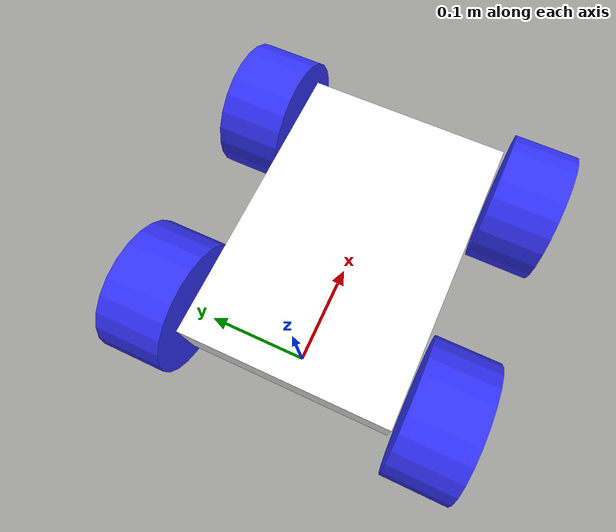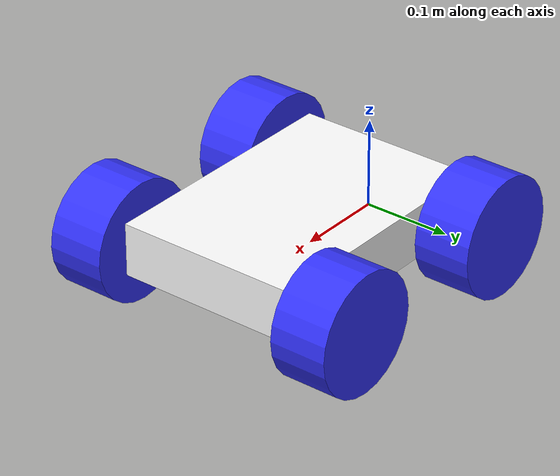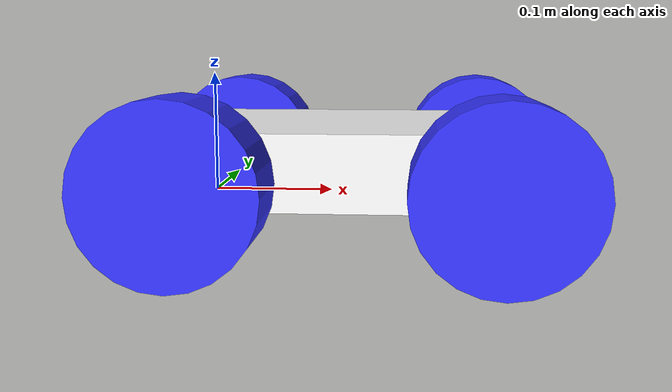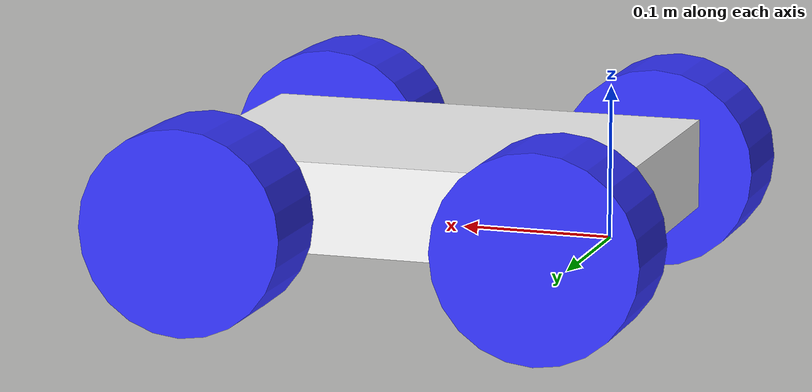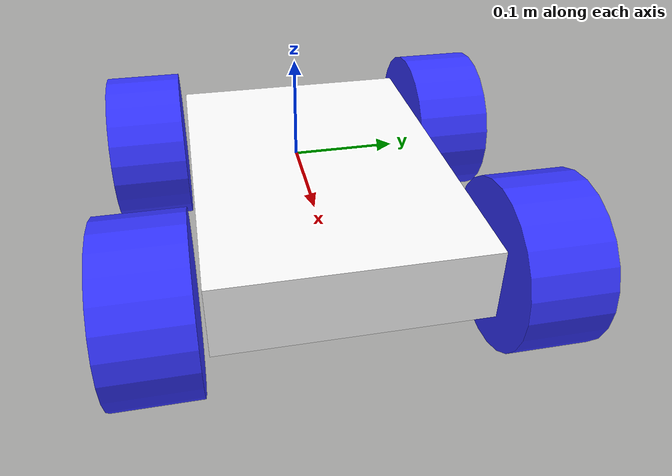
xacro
<?xml version="1.0"?>
<robot xmlns:xacro="http://www.ros.org/wiki/xacro">

    <xacro:include filename="inertial_macros.xacro"/>

    <material name="white">
        <color rgba="1 1 1 1" />
    </material>

    <material name="orange">
        <color rgba="1 0.3 0.1 1"/>
    </material>

    <material name="blue">
        <color rgba="0.2 0.2 1 1"/>
    </material>

    <material name="black">
        <color rgba="0 0 0 1"/>
    </material>

    <!-- BASE LINK -->

    <link name="base_link">

    </link>

    <!-- CHASSIS LINK -->

    <joint name="chassis_joint" type="fixed">
        <parent link="base_link"/>
        <child link="chassis"/>
        <origin xyz="-0.0324 0 0"/>
    </joint>

    <link name="chassis">
        <visual>
            <origin xyz="0.149 0 0.03"/>
            <geometry>
                <box size="0.298 0.210 0.06"/>
            </geometry>
            <material name="white"/>
        </visual>
        <collision>
            <origin xyz="0.149 0 0.03"/>
            <geometry>
                <box size="0.298 0.210 0.06"/>
            </geometry>
        </collision>
        <xacro:inertial_box mass="0.5" x="0.298" y="0.210" z="0.06">
            <origin xyz="0.2 0 0.03" rpy="0 0 0"/>
        </xacro:inertial_box>
    </link>

    <gazebo reference="chassis">
        <material>Gazebo/White</material>
    </gazebo>
    <!-- BACK LEFT WHEEL LINK -->

    <joint name="left_wheel_joint" type="continuous">
        <parent link="base_link"/>
        <child link="back_left_wheel"/>
        <origin xyz="0 0.1425 0.0235" rpy="-${pi/2} 0 0" />
        <axis xyz="0 0 1"/>
    </joint>

    <link name="back_left_wheel">
        <visual>
            <geometry>
                <cylinder radius="0.0675" length="0.065"/>
            </geometry>
            <material name="blue"/>
        </visual>
        <collision>
            <geometry>
                <sphere radius="0.0675"/>
            </geometry>
        </collision>
        <xacro:inertial_cylinder mass="0.1" length="0.065" radius="0.0675">
            <origin xyz="0 0 0" rpy="0 0 0"/>
        </xacro:inertial_cylinder>
    </link>

    <gazebo reference="back_left_wheel">
        <material>Gazebo/Blue</material>
    </gazebo>

    <!-- BACK RIGHT WHEEL LINK -->

    <joint name="right_wheel_joint" type="continuous">
        <parent link="base_link"/>
        <child link="back_right_wheel"/>
        <origin xyz="0 -0.1425 0.0235" rpy="${pi/2} 0 0" />
        <axis xyz="0 0 -1"/>
    </joint>

    <link name="back_right_wheel">
        <visual>
            <geometry>
                <cylinder radius="0.0675" length="0.065"/>
            </geometry>
            <material name="blue"/>
        </visual>
        <collision>
            <geometry>
                <sphere radius="0.0675"/>
            </geometry>
        </collision>
        <xacro:inertial_cylinder mass="0.1" length="0.065" radius="0.0675">
            <origin xyz="0 0 0" rpy="0 0 0"/>
        </xacro:inertial_cylinder>
    </link>

    <gazebo reference="back_right_wheel">
        <material>Gazebo/Blue</material>
    </gazebo>

    <!-- FRONT RIGHT WHEEL LINK -->

    <joint name="front_right_wheel_joint" type="fixed">
        <parent link="base_link"/>
        <child link="front_right_wheel"/>
        <origin xyz="0.2332 0.1425 0.0235" rpy="-${pi/2} 0 0" />
        <axis xyz="0 0 1"/>
    </joint>

    <link name="front_right_wheel">
        <visual>
            <geometry>
                <cylinder radius="0.0675" length="0.065"/>
            </geometry>
            <material name="blue"/>
        </visual>
        <collision>
            <geometry>
                <cylinder radius="0.0675" length="0.065"/>
            </geometry>
        </collision>
        <xacro:inertial_cylinder mass="0.1" length="0.065" radius="0.0675">
            <origin xyz="0 0 0" rpy="0 0 0"/>
        </xacro:inertial_cylinder>
    </link>

    <gazebo reference="front_right_wheel">
        <material>Gazebo/Blue</material>
        <mu1 value="0.001"/>
        <mu2 value="0.001"/>
    </gazebo>

    <!-- FRONT LEFT WHEEL LINK -->

    <joint name="front_left_wheel_joint" type="fixed">
        <parent link="base_link"/>
        <child link="front_left_wheel"/>
        <origin xyz="0.2332 -0.1425 0.0235" rpy="${pi/2} 0 0" />
        <axis xyz="0 0 -1"/>
    </joint>

    <link name="front_left_wheel">
        <visual>
            <geometry>
                <cylinder radius="0.0675" length="0.065"/>
            </geometry>
            <material name="blue"/>
        </visual>
        <collision>
            <geometry>
                <cylinder radius="0.0675" length="0.065"/>
            </geometry>
        </collision>
        <xacro:inertial_cylinder mass="0.1" length="0.065" radius="0.0675">
            <origin xyz="0 0 0" rpy="0 0 0"/>
        </xacro:inertial_cylinder>
    </link>

    <gazebo reference="front_left_wheel">
        <material>Gazebo/Blue</material>
        <mu1 value="0.001"/>
        <mu2 value="0.001"/>
    </gazebo>

</robot>
